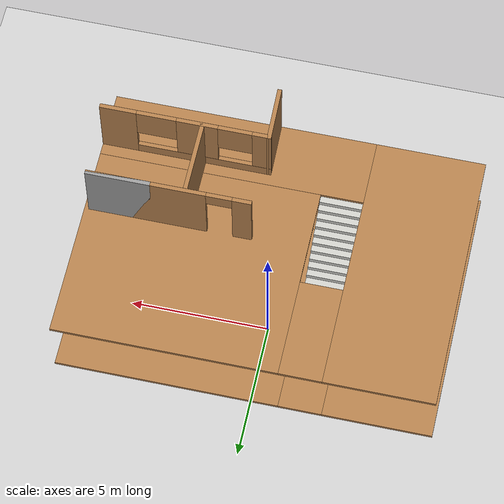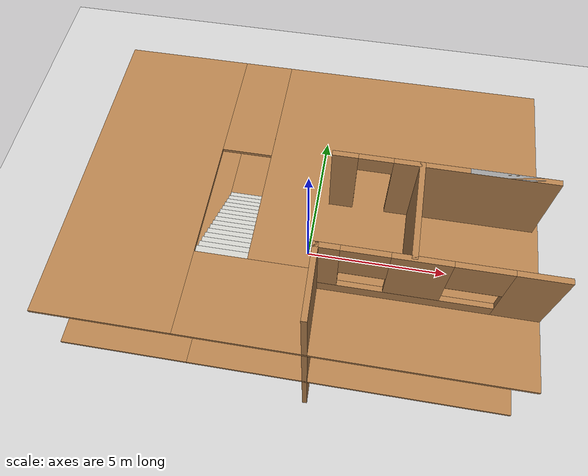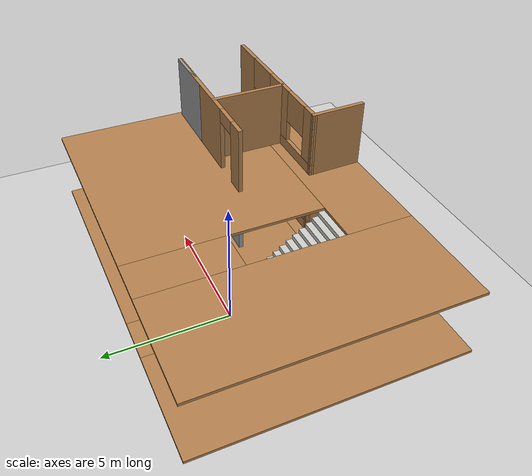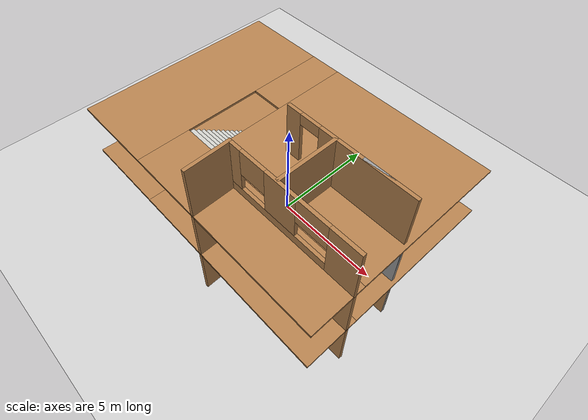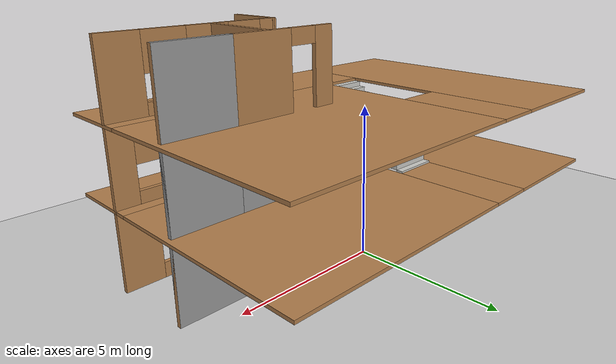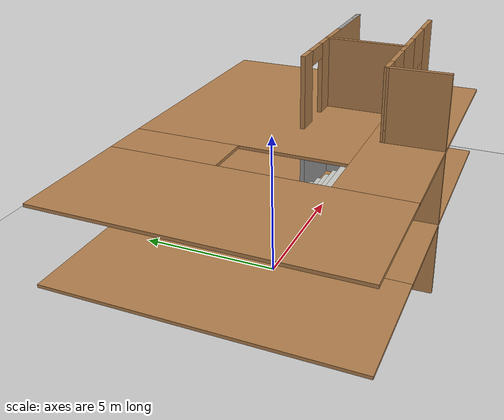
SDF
<sdf version="1.7">
 <world name="default">
  <model name="ground_plane">
   <static>1</static>
   <link name="link">
    <collision name="collision">
     <geometry><plane><normal>0 0 1</normal><size>100 100</size></plane></geometry>
     <surface>
      <contact><collide_bitmask>65535</collide_bitmask></contact>
      <friction><ode><mu>100</mu><mu2>50</mu2></ode></friction>
     </surface>
    </collision>
    <visual name="visual">
     <cast_shadows>0</cast_shadows>
     <geometry><plane><normal>0 0 1</normal><size>100 100</size></plane></geometry>
     <material>
      <script><uri>file://media/materials/scripts/gazebo.material</uri><name>Gazebo/Grey</name></script>
     </material>
    </visual>
   </link>
  </model>
  <model name="three_level_house">
   <pose>0.012851 -0.612237 0 0 -0 0</pose>
   <link name="Floor_1">
    <pose>-0 0 2.5 0 -0 0</pose>
    <visual name="Floor_1_Visual_0">
     <pose>-4.68874 0 0.05 0 -0 0</pose>
     <geometry><box><size>3.84141 9.45494 0.1</size></box></geometry>
     <material>
      <script><uri>file://media/materials/scripts/gazebo.material</uri><name>Gazebo/Wood</name></script>
      <ambient>1 1 1 1</ambient>
     </material>
     <meta><layer>1</layer></meta>
    </visual>
    <collision name="Floor_1_Collision_0">
     <geometry><box><size>3.84141 9.45494 0.1</size></box></geometry>
     <pose>-4.68874 0 0.05 0 -0 0</pose>
    </collision>
    <visual name="Floor_1_Visual_1">
     <pose>1.9207 -3.52351 0.05 0 -0 0</pose>
     <geometry><box><size>9.37748 2.40791 0.1</size></box></geometry>
     <material>
      <script><uri>file://media/materials/scripts/gazebo.material</uri><name>Gazebo/Wood</name></script>
      <ambient>1 1 1 1</ambient>
     </material>
     <meta><layer>1</layer></meta>
    </visual>
    <collision name="Floor_1_Collision_1">
     <geometry><box><size>9.37748 2.40791 0.1</size></box></geometry>
     <pose>1.9207 -3.52351 0.05 0 -0 0</pose>
    </collision>
    <visual name="Floor_1_Visual_2">
     <pose>2.68227 1.20396 0.05 0 -0 0</pose>
     <geometry><box><size>7.85435 7.04702 0.1</size></box></geometry>
     <material>
      <script><uri>file://media/materials/scripts/gazebo.material</uri><name>Gazebo/Wood</name></script>
      <ambient>1 1 1 1</ambient>
     </material>
     <meta><layer>1</layer></meta>
    </visual>
    <collision name="Floor_1_Collision_2">
     <geometry><box><size>7.85435 7.04702 0.1</size></box></geometry>
     <pose>2.68227 1.20396 0.05 0 -0 0</pose>
    </collision>
    <visual name="Floor_1_Visual_3">
     <pose>-2.00647 2.95396 0.05 0 -0 0</pose>
     <geometry><box><size>1.52313 3.54703 0.1</size></box></geometry>
     <material>
      <script><uri>file://media/materials/scripts/gazebo.material</uri><name>Gazebo/Wood</name></script>
      <ambient>1 1 1 1</ambient>
     </material>
     <meta><layer>1</layer></meta>
    </visual>
    <collision name="Floor_1_Collision_3">
     <geometry><box><size>1.52313 3.54703 0.1</size></box></geometry>
     <pose>-2.00647 2.95396 0.05 0 -0 0</pose>
    </collision>
   </link>
   <link name="Floor_3">
    <pose>-0 0 5 0 -0 0</pose>
    <visual name="Floor_3_Visual_0">
     <pose>-4.67718 0 0.05 0 -0 0</pose>
     <geometry><box><size>3.86454 9.45494 0.1</size></box></geometry>
     <material>
      <script><uri>file://media/materials/scripts/gazebo.material</uri><name>Gazebo/Wood</name></script>
      <ambient>1 1 1 1</ambient>
     </material>
     <meta><layer>2</layer></meta>
    </visual>
    <collision name="Floor_3_Collision_0">
     <geometry><box><size>3.86454 9.45494 0.1</size></box></geometry>
     <pose>-4.67718 0 0.05 0 -0 0</pose>
    </collision>
    <visual name="Floor_3_Visual_1">
     <pose>1.93227 -3.52351 0.05 0 -0 0</pose>
     <geometry><box><size>9.35435 2.40791 0.1</size></box></geometry>
     <material>
      <script><uri>file://media/materials/scripts/gazebo.material</uri><name>Gazebo/Wood</name></script>
      <ambient>1 1 1 1</ambient>
     </material>
     <meta><layer>2</layer></meta>
    </visual>
    <collision name="Floor_3_Collision_1">
     <geometry><box><size>9.35435 2.40791 0.1</size></box></geometry>
     <pose>1.93227 -3.52351 0.05 0 -0 0</pose>
    </collision>
    <visual name="Floor_3_Visual_2">
     <pose>2.68227 1.20396 0.05 0 -0 0</pose>
     <geometry><box><size>7.85435 7.04702 0.1</size></box></geometry>
     <material>
      <script><uri>file://media/materials/scripts/gazebo.material</uri><name>Gazebo/Wood</name></script>
      <ambient>1 1 1 1</ambient>
     </material>
     <meta><layer>2</layer></meta>
    </visual>
    <collision name="Floor_3_Collision_2">
     <geometry><box><size>7.85435 7.04702 0.1</size></box></geometry>
     <pose>2.68227 1.20396 0.05 0 -0 0</pose>
    </collision>
    <visual name="Floor_3_Visual_3">
     <pose>-1.99491 2.95396 0.05 0 -0 0</pose>
     <geometry><box><size>1.5 3.54703 0.1</size></box></geometry>
     <material>
      <script><uri>file://media/materials/scripts/gazebo.material</uri><name>Gazebo/Wood</name></script>
      <ambient>1 1 1 1</ambient>
     </material>
     <meta><layer>2</layer></meta>
    </visual>
    <collision name="Floor_3_Collision_3">
     <geometry><box><size>1.5 3.54703 0.1</size></box></geometry>
     <pose>-1.99491 2.95396 0.05 0 -0 0</pose>
    </collision>
   </link>
   <link name="Stairs_0">
    <visual name="Stairs_0_Visual_0">
     <pose>-2.00647 1.06378 0.083333 0 -0 0</pose>
     <geometry><box><size>1.52313 0.233333 0.166667</size></box></geometry>
     <material>
      <script><uri>file://media/materials/scripts/gazebo.material</uri><name>Gazebo/CeilingTiled</name></script>
      <ambient>0.435294 0.796078 0.67451 1</ambient>
     </material>
     <meta><layer>0</layer></meta>
    </visual>
    <collision name="Stairs_0_Collision_0">
     <geometry><box><size>1.52313 0.233333 0.166667</size></box></geometry>
     <pose>-2.00647 1.06378 0.083333 0 -0 0</pose>
    </collision>
    <visual name="Stairs_0_Visual_1">
     <pose>-2.00647 0.830444 0.25 0 -0 0</pose>
     <geometry><box><size>1.52313 0.233333 0.166667</size></box></geometry>
     <material>
      <script><uri>file://media/materials/scripts/gazebo.material</uri><name>Gazebo/CeilingTiled</name></script>
      <ambient>0.435294 0.796078 0.67451 1</ambient>
     </material>
     <meta><layer>0</layer></meta>
    </visual>
    <collision name="Stairs_0_Collision_1">
     <geometry><box><size>1.52313 0.233333 0.166667</size></box></geometry>
     <pose>-2.00647 0.830444 0.25 0 -0 0</pose>
    </collision>
    <visual name="Stairs_0_Visual_2">
     <pose>-2.00647 0.59711 0.416667 0 -0 0</pose>
     <geometry><box><size>1.52313 0.233333 0.166667</size></box></geometry>
     <material>
      <script><uri>file://media/materials/scripts/gazebo.material</uri><name>Gazebo/CeilingTiled</name></script>
      <ambient>0.435294 0.796078 0.67451 1</ambient>
     </material>
     <meta><layer>0</layer></meta>
    </visual>
    <collision name="Stairs_0_Collision_2">
     <geometry><box><size>1.52313 0.233333 0.166667</size></box></geometry>
     <pose>-2.00647 0.59711 0.416667 0 -0 0</pose>
    </collision>
    <visual name="Stairs_0_Visual_3">
     <pose>-2.00647 0.363777 0.583333 0 -0 0</pose>
     <geometry><box><size>1.52313 0.233333 0.166667</size></box></geometry>
     <material>
      <script><uri>file://media/materials/scripts/gazebo.material</uri><name>Gazebo/CeilingTiled</name></script>
      <ambient>0.435294 0.796078 0.67451 1</ambient>
     </material>
     <meta><layer>0</layer></meta>
    </visual>
    <collision name="Stairs_0_Collision_3">
     <geometry><box><size>1.52313 0.233333 0.166667</size></box></geometry>
     <pose>-2.00647 0.363777 0.583333 0 -0 0</pose>
    </collision>
    <visual name="Stairs_0_Visual_4">
     <pose>-2.00647 0.130444 0.75 0 -0 0</pose>
     <geometry><box><size>1.52313 0.233333 0.166667</size></box></geometry>
     <material>
      <script><uri>file://media/materials/scripts/gazebo.material</uri><name>Gazebo/CeilingTiled</name></script>
      <ambient>0.435294 0.796078 0.67451 1</ambient>
     </material>
     <meta><layer>0</layer></meta>
    </visual>
    <collision name="Stairs_0_Collision_4">
     <geometry><box><size>1.52313 0.233333 0.166667</size></box></geometry>
     <pose>-2.00647 0.130444 0.75 0 -0 0</pose>
    </collision>
    <visual name="Stairs_0_Visual_5">
     <pose>-2.00647 -0.10289 0.916667 0 -0 0</pose>
     <geometry><box><size>1.52313 0.233333 0.166667</size></box></geometry>
     <material>
      <script><uri>file://media/materials/scripts/gazebo.material</uri><name>Gazebo/CeilingTiled</name></script>
      <ambient>0.435294 0.796078 0.67451 1</ambient>
     </material>
     <meta><layer>0</layer></meta>
    </visual>
    <collision name="Stairs_0_Collision_5">
     <geometry><box><size>1.52313 0.233333 0.166667</size></box></geometry>
     <pose>-2.00647 -0.10289 0.916667 0 -0 0</pose>
    </collision>
    <visual name="Stairs_0_Visual_6">
     <pose>-2.00647 -0.336223 1.08333 0 -0 0</pose>
     <geometry><box><size>1.52313 0.233333 0.166667</size></box></geometry>
     <material>
      <script><uri>file://media/materials/scripts/gazebo.material</uri><name>Gazebo/CeilingTiled</name></script>
      <ambient>0.435294 0.796078 0.67451 1</ambient>
     </material>
     <meta><layer>0</layer></meta>
    </visual>
    <collision name="Stairs_0_Collision_6">
     <geometry><box><size>1.52313 0.233333 0.166667</size></box></geometry>
     <pose>-2.00647 -0.336223 1.08333 0 -0 0</pose>
    </collision>
    <visual name="Stairs_0_Visual_7">
     <pose>-2.00647 -0.569556 1.25 0 -0 0</pose>
     <geometry><box><size>1.52313 0.233333 0.166667</size></box></geometry>
     <material>
      <script><uri>file://media/materials/scripts/gazebo.material</uri><name>Gazebo/CeilingTiled</name></script>
      <ambient>0.435294 0.796078 0.67451 1</ambient>
     </material>
     <meta><layer>0</layer></meta>
    </visual>
    <collision name="Stairs_0_Collision_7">
     <geometry><box><size>1.52313 0.233333 0.166667</size></box></geometry>
     <pose>-2.00647 -0.569556 1.25 0 -0 0</pose>
    </collision>
    <visual name="Stairs_0_Visual_8">
     <pose>-2.00647 -0.80289 1.41667 0 -0 0</pose>
     <geometry><box><size>1.52313 0.233333 0.166667</size></box></geometry>
     <material>
      <script><uri>file://media/materials/scripts/gazebo.material</uri><name>Gazebo/CeilingTiled</name></script>
      <ambient>0.435294 0.796078 0.67451 1</ambient>
     </material>
     <meta><layer>0</layer></meta>
    </visual>
    <collision name="Stairs_0_Collision_8">
     <geometry><box><size>1.52313 0.233333 0.166667</size></box></geometry>
     <pose>-2.00647 -0.80289 1.41667 0 -0 0</pose>
    </collision>
    <visual name="Stairs_0_Visual_9">
     <pose>-2.00647 -1.03622 1.58333 0 -0 0</pose>
     <geometry><box><size>1.52313 0.233333 0.166667</size></box></geometry>
     <material>
      <script><uri>file://media/materials/scripts/gazebo.material</uri><name>Gazebo/CeilingTiled</name></script>
      <ambient>0.435294 0.796078 0.67451 1</ambient>
     </material>
     <meta><layer>0</layer></meta>
    </visual>
    <collision name="Stairs_0_Collision_9">
     <geometry><box><size>1.52313 0.233333 0.166667</size></box></geometry>
     <pose>-2.00647 -1.03622 1.58333 0 -0 0</pose>
    </collision>
    <visual name="Stairs_0_Visual_10">
     <pose>-2.00647 -1.26956 1.75 0 -0 0</pose>
     <geometry><box><size>1.52313 0.233333 0.166667</size></box></geometry>
     <material>
      <script><uri>file://media/materials/scripts/gazebo.material</uri><name>Gazebo/CeilingTiled</name></script>
      <ambient>0.435294 0.796078 0.67451 1</ambient>
     </material>
     <meta><layer>0</layer></meta>
    </visual>
    <collision name="Stairs_0_Collision_10">
     <geometry><box><size>1.52313 0.233333 0.166667</size></box></geometry>
     <pose>-2.00647 -1.26956 1.75 0 -0 0</pose>
    </collision>
    <visual name="Stairs_0_Visual_11">
     <pose>-2.00647 -1.50289 1.91667 0 -0 0</pose>
     <geometry><box><size>1.52313 0.233333 0.166667</size></box></geometry>
     <material>
      <script><uri>file://media/materials/scripts/gazebo.material</uri><name>Gazebo/CeilingTiled</name></script>
      <ambient>0.435294 0.796078 0.67451 1</ambient>
     </material>
     <meta><layer>0</layer></meta>
    </visual>
    <collision name="Stairs_0_Collision_11">
     <geometry><box><size>1.52313 0.233333 0.166667</size></box></geometry>
     <pose>-2.00647 -1.50289 1.91667 0 -0 0</pose>
    </collision>
    <visual name="Stairs_0_Visual_12">
     <pose>-2.00647 -1.73622 2.08333 0 -0 0</pose>
     <geometry><box><size>1.52313 0.233333 0.166667</size></box></geometry>
     <material>
      <script><uri>file://media/materials/scripts/gazebo.material</uri><name>Gazebo/CeilingTiled</name></script>
      <ambient>0.435294 0.796078 0.67451 1</ambient>
     </material>
     <meta><layer>0</layer></meta>
    </visual>
    <collision name="Stairs_0_Collision_12">
     <geometry><box><size>1.52313 0.233333 0.166667</size></box></geometry>
     <pose>-2.00647 -1.73622 2.08333 0 -0 0</pose>
    </collision>
    <visual name="Stairs_0_Visual_13">
     <pose>-2.00647 -1.96956 2.25 0 -0 0</pose>
     <geometry><box><size>1.52313 0.233333 0.166667</size></box></geometry>
     <material>
      <script><uri>file://media/materials/scripts/gazebo.material</uri><name>Gazebo/CeilingTiled</name></script>
      <ambient>0.435294 0.796078 0.67451 1</ambient>
     </material>
     <meta><layer>0</layer></meta>
    </visual>
    <collision name="Stairs_0_Collision_13">
     <geometry><box><size>1.52313 0.233333 0.166667</size></box></geometry>
     <pose>-2.00647 -1.96956 2.25 0 -0 0</pose>
    </collision>
    <visual name="Stairs_0_Visual_14">
     <pose>-2.00647 -2.20289 2.41667 0 -0 0</pose>
     <geometry><box><size>1.52313 0.233333 0.166667</size></box></geometry>
     <material>
      <script><uri>file://media/materials/scripts/gazebo.material</uri><name>Gazebo/CeilingTiled</name></script>
      <ambient>0.435294 0.796078 0.67451 1</ambient>
     </material>
     <meta><layer>0</layer></meta>
    </visual>
    <collision name="Stairs_0_Collision_14">
     <geometry><box><size>1.52313 0.233333 0.166667</size></box></geometry>
     <pose>-2.00647 -2.20289 2.41667 0 -0 0</pose>
    </collision>
   </link>
   <link name="Stairs_1">
    <visual name="Stairs_1_Visual_0">
     <pose>-1.99491 1.06378 2.58333 0 -0 0</pose>
     <geometry><box><size>1.5 0.233333 0.166667</size></box></geometry>
     <material>
      <script><uri>file://media/materials/scripts/gazebo.material</uri><name>Gazebo/CeilingTiled</name></script>
      <ambient>0.435294 0.796078 0.67451 1</ambient>
     </material>
     <meta><layer>1</layer></meta>
    </visual>
    <collision name="Stairs_1_Collision_0">
     <geometry><box><size>1.5 0.233333 0.166667</size></box></geometry>
     <pose>-1.99491 1.06378 2.58333 0 -0 0</pose>
    </collision>
    <visual name="Stairs_1_Visual_1">
     <pose>-1.99491 0.830444 2.75 0 -0 0</pose>
     <geometry><box><size>1.5 0.233333 0.166667</size></box></geometry>
     <material>
      <script><uri>file://media/materials/scripts/gazebo.material</uri><name>Gazebo/CeilingTiled</name></script>
      <ambient>0.435294 0.796078 0.67451 1</ambient>
     </material>
     <meta><layer>1</layer></meta>
    </visual>
    <collision name="Stairs_1_Collision_1">
     <geometry><box><size>1.5 0.233333 0.166667</size></box></geometry>
     <pose>-1.99491 0.830444 2.75 0 -0 0</pose>
    </collision>
    <visual name="Stairs_1_Visual_2">
     <pose>-1.99491 0.59711 2.91667 0 -0 0</pose>
     <geometry><box><size>1.5 0.233333 0.166667</size></box></geometry>
     <material>
      <script><uri>file://media/materials/scripts/gazebo.material</uri><name>Gazebo/CeilingTiled</name></script>
      <ambient>0.435294 0.796078 0.67451 1</ambient>
     </material>
     <meta><layer>1</layer></meta>
    </visual>
    <collision name="Stairs_1_Collision_2">
     <geometry><box><size>1.5 0.233333 0.166667</size></box></geometry>
     <pose>-1.99491 0.59711 2.91667 0 -0 0</pose>
    </collision>
    <visual name="Stairs_1_Visual_3">
     <pose>-1.99491 0.363777 3.08333 0 -0 0</pose>
     <geometry><box><size>1.5 0.233333 0.166667</size></box></geometry>
     <material>
      <script><uri>file://media/materials/scripts/gazebo.material</uri><name>Gazebo/CeilingTiled</name></script>
      <ambient>0.435294 0.796078 0.67451 1</ambient>
     </material>
     <meta><layer>1</layer></meta>
    </visual>
    <collision name="Stairs_1_Collision_3">
     <geometry><box><size>1.5 0.233333 0.166667</size></box></geometry>
     <pose>-1.99491 0.363777 3.08333 0 -0 0</pose>
    </collision>
    <visual name="Stairs_1_Visual_4">
     <pose>-1.99491 0.130444 3.25 0 -0 0</pose>
     <geometry><box><size>1.5 0.233333 0.166667</size></box></geometry>
     <material>
      <script><uri>file://media/materials/scripts/gazebo.material</uri><name>Gazebo/CeilingTiled</name></script>
      <ambient>0.435294 0.796078 0.67451 1</ambient>
     </material>
     <meta><layer>1</layer></meta>
    </visual>
    <collision name="Stairs_1_Collision_4">
     <geometry><box><size>1.5 0.233333 0.166667</size></box></geometry>
     <pose>-1.99491 0.130444 3.25 0 -0 0</pose>
    </collision>
    <visual name="Stairs_1_Visual_5">
     <pose>-1.99491 -0.10289 3.41667 0 -0 0</pose>
     <geometry><box><size>1.5 0.233333 0.166667</size></box></geometry>
     <material>
      <script><uri>file://media/materials/scripts/gazebo.material</uri><name>Gazebo/CeilingTiled</name></script>
      <ambient>0.435294 0.796078 0.67451 1</ambient>
     </material>
     <meta><layer>1</layer></meta>
    </visual>
    <collision name="Stairs_1_Collision_5">
     <geometry><box><size>1.5 0.233333 0.166667</size></box></geometry>
     <pose>-1.99491 -0.10289 3.41667 0 -0 0</pose>
    </collision>
    <visual name="Stairs_1_Visual_6">
     <pose>-1.99491 -0.336223 3.58333 0 -0 0</pose>
     <geometry><box><size>1.5 0.233333 0.166667</size></box></geometry>
     <material>
      <script><uri>file://media/materials/scripts/gazebo.material</uri><name>Gazebo/CeilingTiled</name></script>
      <ambient>0.435294 0.796078 0.67451 1</ambient>
     </material>
     <meta><layer>1</layer></meta>
    </visual>
    <collision name="Stairs_1_Collision_6">
     <geometry><box><size>1.5 0.233333 0.166667</size></box></geometry>
     <pose>-1.99491 -0.336223 3.58333 0 -0 0</pose>
    </collision>
    <visual name="Stairs_1_Visual_7">
     <pose>-1.99491 -0.569556 3.75 0 -0 0</pose>
     <geometry><box><size>1.5 0.233333 0.166667</size></box></geometry>
     <material>
      <script><uri>file://media/materials/scripts/gazebo.material</uri><name>Gazebo/CeilingTiled</name></script>
      <ambient>0.435294 0.796078 0.67451 1</ambient>
     </material>
     <meta><layer>1</layer></meta>
    </visual>
    <collision name="Stairs_1_Collision_7">
     <geometry><box><size>1.5 0.233333 0.166667</size></box></geometry>
     <pose>-1.99491 -0.569556 3.75 0 -0 0</pose>
    </collision>
    <visual name="Stairs_1_Visual_8">
     <pose>-1.99491 -0.80289 3.91667 0 -0 0</pose>
     <geometry><box><size>1.5 0.233333 0.166667</size></box></geometry>
     <material>
      <script><uri>file://media/materials/scripts/gazebo.material</uri><name>Gazebo/CeilingTiled</name></script>
      <ambient>0.435294 0.796078 0.67451 1</ambient>
     </material>
     <meta><layer>1</layer></meta>
    </visual>
    <collision name="Stairs_1_Collision_8">
     <geometry><box><size>1.5 0.233333 0.166667</size></box></geometry>
     <pose>-1.99491 -0.80289 3.91667 0 -0 0</pose>
    </collision>
    <visual name="Stairs_1_Visual_9">
     <pose>-1.99491 -1.03622 4.08333 0 -0 0</pose>
     <geometry><box><size>1.5 0.233333 0.166667</size></box></geometry>
     <material>
      <script><uri>file://media/materials/scripts/gazebo.material</uri><name>Gazebo/CeilingTiled</name></script>
      <ambient>0.435294 0.796078 0.67451 1</ambient>
     </material>
     <meta><layer>1</layer></meta>
    </visual>
    <collision name="Stairs_1_Collision_9">
     <geometry><box><size>1.5 0.233333 0.166667</size></box></geometry>
     <pose>-1.99491 -1.03622 4.08333 0 -0 0</pose>
    </collision>
    <visual name="Stairs_1_Visual_10">
     <pose>-1.99491 -1.26956 4.25 0 -0 0</pose>
     <geometry><box><size>1.5 0.233333 0.166667</size></box></geometry>
     <material>
      <script><uri>file://media/materials/scripts/gazebo.material</uri><name>Gazebo/CeilingTiled</name></script>
      <ambient>0.435294 0.796078 0.67451 1</ambient>
     </material>
     <meta><layer>1</layer></meta>
    </visual>
    <collision name="Stairs_1_Collision_10">
     <geometry><box><size>1.5 0.233333 0.166667</size></box></geometry>
     <pose>-1.99491 -1.26956 4.25 0 -0 0</pose>
    </collision>
    <visual name="Stairs_1_Visual_11">
     <pose>-1.99491 -1.50289 4.41667 0 -0 0</pose>
     <geometry><box><size>1.5 0.233333 0.166667</size></box></geometry>
     <material>
      <script><uri>file://media/materials/scripts/gazebo.material</uri><name>Gazebo/CeilingTiled</name></script>
      <ambient>0.435294 0.796078 0.67451 1</ambient>
     </material>
     <meta><layer>1</layer></meta>
    </visual>
    <collision name="Stairs_1_Collision_11">
     <geometry><box><size>1.5 0.233333 0.166667</size></box></geometry>
     <pose>-1.99491 -1.50289 4.41667 0 -0 0</pose>
    </collision>
    <visual name="Stairs_1_Visual_12">
     <pose>-1.99491 -1.73622 4.58333 0 -0 0</pose>
     <geometry><box><size>1.5 0.233333 0.166667</size></box></geometry>
     <material>
      <script><uri>file://media/materials/scripts/gazebo.material</uri><name>Gazebo/CeilingTiled</name></script>
      <ambient>0.435294 0.796078 0.67451 1</ambient>
     </material>
     <meta><layer>1</layer></meta>
    </visual>
    <collision name="Stairs_1_Collision_12">
     <geometry><box><size>1.5 0.233333 0.166667</size></box></geometry>
     <pose>-1.99491 -1.73622 4.58333 0 -0 0</pose>
    </collision>
    <visual name="Stairs_1_Visual_13">
     <pose>-1.99491 -1.96956 4.75 0 -0 0</pose>
     <geometry><box><size>1.5 0.233333 0.166667</size></box></geometry>
     <material>
      <script><uri>file://media/materials/scripts/gazebo.material</uri><name>Gazebo/CeilingTiled</name></script>
      <ambient>0.435294 0.796078 0.67451 1</ambient>
     </material>
     <meta><layer>1</layer></meta>
    </visual>
    <collision name="Stairs_1_Collision_13">
     <geometry><box><size>1.5 0.233333 0.166667</size></box></geometry>
     <pose>-1.99491 -1.96956 4.75 0 -0 0</pose>
    </collision>
    <visual name="Stairs_1_Visual_14">
     <pose>-1.99491 -2.20289 4.91667 0 -0 0</pose>
     <geometry><box><size>1.5 0.233333 0.166667</size></box></geometry>
     <material>
      <script><uri>file://media/materials/scripts/gazebo.material</uri><name>Gazebo/CeilingTiled</name></script>
      <ambient>0.435294 0.796078 0.67451 1</ambient>
     </material>
     <meta><layer>1</layer></meta>
    </visual>
    <collision name="Stairs_1_Collision_14">
     <geometry><box><size>1.5 0.233333 0.166667</size></box></geometry>
     <pose>-1.99491 -2.20289 4.91667 0 -0 0</pose>
    </collision>
   </link>
   <link name="Wall_117">
    <pose>3.60944 -2.80062 5 0 -0 3.14159</pose>
    <visual name="Wall_117_Visual_0">
     <pose>-2.35599 0 1.25 0 -0 0</pose>
     <geometry><box><size>1.28803 0.15 2.5</size></box></geometry>
     <material>
      <script><uri>file://media/materials/scripts/gazebo.material</uri><name>Gazebo/Wood</name></script>
      <ambient>1 1 1 1</ambient>
     </material>
     <meta><layer>2</layer></meta>
    </visual>
    <collision name="Wall_117_Collision_0">
     <geometry><box><size>1.28803 0.15 2.5</size></box></geometry>
     <pose>-2.35599 0 1.25 0 -0 0</pose>
    </collision>
    <visual name="Wall_117_Visual_1">
     <pose>0.644013 0 0.25 0 -0 0</pose>
     <geometry><box><size>4.71197 0.15 0.5</size></box></geometry>
     <material>
      <script><uri>file://media/materials/scripts/gazebo.material</uri><name>Gazebo/Wood</name></script>
      <ambient>1 1 1 1</ambient>
     </material>
     <meta><layer>2</layer></meta>
    </visual>
    <collision name="Wall_117_Collision_1">
     <geometry><box><size>4.71197 0.15 0.5</size></box></geometry>
     <pose>0.644013 0 0.25 0 -0 0</pose>
    </collision>
    <visual name="Wall_117_Visual_2">
     <pose>0.413516 0 1.5 0 -0 0</pose>
     <geometry><box><size>1.45098 0.15 2</size></box></geometry>
     <material>
      <script><uri>file://media/materials/scripts/gazebo.material</uri><name>Gazebo/Wood</name></script>
      <ambient>1 1 1 1</ambient>
     </material>
     <meta><layer>2</layer></meta>
    </visual>
    <collision name="Wall_117_Collision_2">
     <geometry><box><size>1.45098 0.15 2</size></box></geometry>
     <pose>0.413516 0 1.5 0 -0 0</pose>
    </collision>
    <visual name="Wall_117_Visual_3">
     <pose>2.6695 0 1.5 0 -0 0</pose>
     <geometry><box><size>0.660994 0.15 2</size></box></geometry>
     <material>
      <script><uri>file://media/materials/scripts/gazebo.material</uri><name>Gazebo/Wood</name></script>
      <ambient>1 1 1 1</ambient>
     </material>
     <meta><layer>2</layer></meta>
    </visual>
    <collision name="Wall_117_Collision_3">
     <geometry><box><size>0.660994 0.15 2</size></box></geometry>
     <pose>2.6695 0 1.5 0 -0 0</pose>
    </collision>
    <visual name="Wall_117_Visual_4">
     <pose>-1.01197 0 1.9 0 -0 0</pose>
     <geometry><box><size>1.4 0.15 1.2</size></box></geometry>
     <material>
      <script><uri>file://media/materials/scripts/gazebo.material</uri><name>Gazebo/Wood</name></script>
      <ambient>1 1 1 1</ambient>
     </material>
     <meta><layer>2</layer></meta>
    </visual>
    <collision name="Wall_117_Collision_4">
     <geometry><box><size>1.4 0.15 1.2</size></box></geometry>
     <pose>-1.01197 0 1.9 0 -0 0</pose>
    </collision>
    <visual name="Wall_117_Visual_5">
     <pose>1.73901 0 1.9 0 -0 0</pose>
     <geometry><box><size>1.2 0.15 1.2</size></box></geometry>
     <material>
      <script><uri>file://media/materials/scripts/gazebo.material</uri><name>Gazebo/Wood</name></script>
      <ambient>1 1 1 1</ambient>
     </material>
     <meta><layer>2</layer></meta>
    </visual>
    <collision name="Wall_117_Collision_5">
     <geometry><box><size>1.2 0.15 1.2</size></box></geometry>
     <pose>1.73901 0 1.9 0 -0 0</pose>
    </collision>
   </link>
   <link name="Wall_130">
    <collision name="Wall_130_Collision">
     <geometry><box><size>2.00058 0.15 2.5</size></box></geometry>
     <pose>0 0 1.25 0 -0 0</pose>
    </collision>
    <visual name="Wall_130_Visual">
     <pose>0 0 1.25 0 -0 0</pose>
     <geometry><box><size>2.00058 0.15 2.5</size></box></geometry>
     <material>
      <script><uri>file://media/materials/scripts/gazebo.material</uri><name>Gazebo/Wood</name></script>
      <ambient>1 1 1 1</ambient>
     </material>
     <meta><layer>2</layer></meta>
    </visual>
    <pose>0.707575 -3.72562 5 0 -0 1.5958</pose>
   </link>
   <link name="Wall_135">
    <collision name="Wall_135_Collision">
     <geometry><box><size>2.25 0.15 2.5</size></box></geometry>
     <pose>0 0 1.25 0 -0 0</pose>
    </collision>
    <visual name="Wall_135_Visual">
     <pose>0 0 1.25 0 -0 0</pose>
     <geometry><box><size>2.25 0.15 2.5</size></box></geometry>
     <material>
      <script><uri>file://media/materials/scripts/gazebo.material</uri><name>Gazebo/Grey</name></script>
      <ambient>1 1 1 1</ambient>
     </material>
     <meta><layer>2</layer></meta>
    </visual>
    <pose>5.33098 -0.142465 5 0 -0 0</pose>
   </link>
   <link name="Wall_136">
    <pose>3.58098 -0.142465 5 0 -0 3.14159</pose>
    <visual name="Wall_136_Visual_0">
     <pose>-0.787002 0 1.25 0 -0 0</pose>
     <geometry><box><size>4.176 0.15 2.5</size></box></geometry>
     <material>
      <script><uri>file://media/materials/scripts/gazebo.material</uri><name>Gazebo/Wood</name></script>
      <ambient>1 1 1 1</ambient>
     </material>
     <meta><layer>2</layer></meta>
    </visual>
    <collision name="Wall_136_Collision_0">
     <geometry><box><size>4.176 0.15 2.5</size></box></geometry>
     <pose>-0.787002 0 1.25 0 -0 0</pose>
    </collision>
    <visual name="Wall_136_Visual_1">
     <pose>2.538 0 1.25 0 -0 0</pose>
     <geometry><box><size>0.674004 0.15 2.5</size></box></geometry>
     <material>
      <script><uri>file://media/materials/scripts/gazebo.material</uri><name>Gazebo/Wood</name></script>
      <ambient>1 1 1 1</ambient>
     </material>
     <meta><layer>2</layer></meta>
    </visual>
    <collision name="Wall_136_Collision_1">
     <geometry><box><size>0.674004 0.15 2.5</size></box></geometry>
     <pose>2.538 0 1.25 0 -0 0</pose>
    </collision>
    <visual name="Wall_136_Visual_2">
     <pose>1.751 0 2.25 0 -0 0</pose>
     <geometry><box><size>0.9 0.15 0.5</size></box></geometry>
     <material>
      <script><uri>file://media/materials/scripts/gazebo.material</uri><name>Gazebo/Wood</name></script>
      <ambient>1 1 1 1</ambient>
     </material>
     <meta><layer>2</layer></meta>
    </visual>
    <collision name="Wall_136_Collision_2">
     <geometry><box><size>0.9 0.15 0.5</size></box></geometry>
     <pose>1.751 0 2.25 0 -0 0</pose>
    </collision>
   </link>
   <link name="Wall_137">
    <collision name="Wall_137_Collision">
     <geometry><box><size>2.75 0.15 2.5</size></box></geometry>
     <pose>0 0 1.25 0 -0 0</pose>
    </collision>
    <visual name="Wall_137_Visual">
     <pose>0 0 1.25 0 -0 0</pose>
     <geometry><box><size>2.75 0.15 2.5</size></box></geometry>
     <material>
      <script><uri>file://media/materials/scripts/gazebo.material</uri><name>Gazebo/Wood</name></script>
      <ambient>1 1 1 1</ambient>
     </material>
     <meta><layer>2</layer></meta>
    </visual>
    <pose>3.00803 -1.44336 5 0 -0 -1.5708</pose>
   </link>
   <link name="Wall_27">
    <collision name="Wall_27_Collision">
     <geometry><box><size>2.00058 0.15 2.5</size></box></geometry>
     <pose>0 0 1.25 0 -0 0</pose>
    </collision>
    <visual name="Wall_27_Visual">
     <pose>0 0 1.25 0 -0 0</pose>
     <geometry><box><size>2.00058 0.15 2.5</size></box></geometry>
     <material>
      <script><uri>file://media/materials/scripts/gazebo.material</uri><name>Gazebo/Wood</name></script>
      <ambient>1 1 1 1</ambient>
     </material>
     <meta><layer>0</layer></meta>
    </visual>
    <pose>0.707575 -3.72562 0 0 -0 1.5958</pose>
   </link>
   <link name="Wall_33">
    <collision name="Wall_33_Collision">
     <geometry><box><size>2.25 0.15 2.5</size></box></geometry>
     <pose>0 0 1.25 0 -0 0</pose>
    </collision>
    <visual name="Wall_33_Visual">
     <pose>0 0 1.25 0 -0 0</pose>
     <geometry><box><size>2.25 0.15 2.5</size></box></geometry>
     <material>
      <script><uri>file://media/materials/scripts/gazebo.material</uri><name>Gazebo/Grey</name></script>
      <ambient>1 1 1 1</ambient>
     </material>
     <meta><layer>0</layer></meta>
    </visual>
    <pose>5.33098 -0.142465 0 0 -0 0</pose>
   </link>
   <link name="Wall_34">
    <pose>3.58098 -0.142465 0 0 -0 3.14159</pose>
    <visual name="Wall_34_Visual_0">
     <pose>-1.70207 0 1.25 0 -0 0</pose>
     <geometry><box><size>2.34586 0.15 2.5</size></box></geometry>
     <material>
      <script><uri>file://media/materials/scripts/gazebo.material</uri><name>Gazebo/Wood</name></script>
      <ambient>1 1 1 1</ambient>
     </material>
     <meta><layer>0</layer></meta>
    </visual>
    <collision name="Wall_34_Collision_0">
     <geometry><box><size>2.34586 0.15 2.5</size></box></geometry>
     <pose>-1.70207 0 1.25 0 -0 0</pose>
    </collision>
    <visual name="Wall_34_Visual_1">
     <pose>0.812698 0 1.25 0 -0 0</pose>
     <geometry><box><size>0.883675 0.15 2.5</size></box></geometry>
     <material>
      <script><uri>file://media/materials/scripts/gazebo.material</uri><name>Gazebo/Wood</name></script>
      <ambient>1 1 1 1</ambient>
     </material>
     <meta><layer>0</layer></meta>
    </visual>
    <collision name="Wall_34_Collision_1">
     <geometry><box><size>0.883675 0.15 2.5</size></box></geometry>
     <pose>0.812698 0 1.25 0 -0 0</pose>
    </collision>
    <visual name="Wall_34_Visual_2">
     <pose>2.51477 0 1.25 0 -0 0</pose>
     <geometry><box><size>0.720465 0.15 2.5</size></box></geometry>
     <material>
      <script><uri>file://media/materials/scripts/gazebo.material</uri><name>Gazebo/Wood</name></script>
      <ambient>1 1 1 1</ambient>
     </material>
     <meta><layer>0</layer></meta>
    </visual>
    <collision name="Wall_34_Collision_2">
     <geometry><box><size>0.720465 0.15 2.5</size></box></geometry>
     <pose>2.51477 0 1.25 0 -0 0</pose>
    </collision>
    <visual name="Wall_34_Visual_3">
     <pose>-0.07914 0 2.25 0 -0 0</pose>
     <geometry><box><size>0.9 0.15 0.5</size></box></geometry>
     <material>
      <script><uri>file://media/materials/scripts/gazebo.material</uri><name>Gazebo/Wood</name></script>
      <ambient>1 1 1 1</ambient>
     </material>
     <meta><layer>0</layer></meta>
    </visual>
    <collision name="Wall_34_Collision_3">
     <geometry><box><size>0.9 0.15 0.5</size></box></geometry>
     <pose>-0.07914 0 2.25 0 -0 0</pose>
    </collision>
    <visual name="Wall_34_Visual_4">
     <pose>1.70453 0 2.25 0 -0 0</pose>
     <geometry><box><size>0.9 0.15 0.5</size></box></geometry>
     <material>
      <script><uri>file://media/materials/scripts/gazebo.material</uri><name>Gazebo/Wood</name></script>
      <ambient>1 1 1 1</ambient>
     </material>
     <meta><layer>0</layer></meta>
    </visual>
    <collision name="Wall_34_Collision_4">
     <geometry><box><size>0.9 0.15 0.5</size></box></geometry>
     <pose>1.70453 0 2.25 0 -0 0</pose>
    </collision>
   </link>
   <link name="Wall_36">
    <collision name="Wall_36_Collision">
     <geometry><box><size>2.75 0.15 2.5</size></box></geometry>
     <pose>0 0 1.25 0 -0 0</pose>
    </collision>
    <visual name="Wall_36_Visual">
     <pose>0 0 1.25 0 -0 0</pose>
     <geometry><box><size>2.75 0.15 2.5</size></box></geometry>
     <material>
      <script><uri>file://media/materials/scripts/gazebo.material</uri><name>Gazebo/Wood</name></script>
      <ambient>1 1 1 1</ambient>
     </material>
     <meta><layer>0</layer></meta>
    </visual>
    <pose>3.00803 -1.44336 0 0 -0 -1.5708</pose>
   </link>
   <link name="Wall_67">
    <pose>3.60944 -2.80062 2.5 0 -0 3.14159</pose>
    <visual name="Wall_67_Visual_0">
     <pose>-2.62336 0 1.25 0 -0 0</pose>
     <geometry><box><size>0.753279 0.15 2.5</size></box></geometry>
     <material>
      <script><uri>file://media/materials/scripts/gazebo.material</uri><name>Gazebo/Wood</name></script>
      <ambient>1 1 1 1</ambient>
     </material>
     <meta><layer>1</layer></meta>
    </visual>
    <collision name="Wall_67_Collision_0">
     <geometry><box><size>0.753279 0.15 2.5</size></box></geometry>
     <pose>-2.62336 0 1.25 0 -0 0</pose>
    </collision>
    <visual name="Wall_67_Visual_1">
     <pose>0.376639 0 0.25 0 -0 0</pose>
     <geometry><box><size>5.24672 0.15 0.5</size></box></geometry>
     <material>
      <script><uri>file://media/materials/scripts/gazebo.material</uri><name>Gazebo/Wood</name></script>
      <ambient>1 1 1 1</ambient>
     </material>
     <meta><layer>1</layer></meta>
    </visual>
    <collision name="Wall_67_Collision_1">
     <geometry><box><size>5.24672 0.15 0.5</size></box></geometry>
     <pose>0.376639 0 0.25 0 -0 0</pose>
    </collision>
    <visual name="Wall_67_Visual_2">
     <pose>0.326844 0 1.5 0 -0 0</pose>
     <geometry><box><size>2.14713 0.15 2</size></box></geometry>
     <material>
      <script><uri>file://media/materials/scripts/gazebo.material</uri><name>Gazebo/Wood</name></script>
      <ambient>1 1 1 1</ambient>
     </material>
     <meta><layer>1</layer></meta>
    </visual>
    <collision name="Wall_67_Collision_2">
     <geometry><box><size>2.14713 0.15 2</size></box></geometry>
     <pose>0.326844 0 1.5 0 -0 0</pose>
    </collision>
    <visual name="Wall_67_Visual_3">
     <pose>2.6002 0 1.5 0 -0 0</pose>
     <geometry><box><size>0.799591 0.15 2</size></box></geometry>
     <material>
      <script><uri>file://media/materials/scripts/gazebo.material</uri><name>Gazebo/Wood</name></script>
      <ambient>1 1 1 1</ambient>
     </material>
     <meta><layer>1</layer></meta>
    </visual>
    <collision name="Wall_67_Collision_3">
     <geometry><box><size>0.799591 0.15 2</size></box></geometry>
     <pose>2.6002 0 1.5 0 -0 0</pose>
    </collision>
    <visual name="Wall_67_Visual_4">
     <pose>-1.49672 0 1.9 0 -0 0</pose>
     <geometry><box><size>1.5 0.15 1.2</size></box></geometry>
     <material>
      <script><uri>file://media/materials/scripts/gazebo.material</uri><name>Gazebo/Wood</name></script>
      <ambient>1 1 1 1</ambient>
     </material>
     <meta><layer>1</layer></meta>
    </visual>
    <collision name="Wall_67_Collision_4">
     <geometry><box><size>1.5 0.15 1.2</size></box></geometry>
     <pose>-1.49672 0 1.9 0 -0 0</pose>
    </collision>
    <visual name="Wall_67_Visual_5">
     <pose>1.80041 0 1.9 0 -0 0</pose>
     <geometry><box><size>0.8 0.15 1.2</size></box></geometry>
     <material>
      <script><uri>file://media/materials/scripts/gazebo.material</uri><name>Gazebo/Wood</name></script>
      <ambient>1 1 1 1</ambient>
     </material>
     <meta><layer>1</layer></meta>
    </visual>
    <collision name="Wall_67_Collision_5">
     <geometry><box><size>0.8 0.15 1.2</size></box></geometry>
     <pose>1.80041 0 1.9 0 -0 0</pose>
    </collision>
   </link>
   <link name="Wall_80">
    <collision name="Wall_80_Collision">
     <geometry><box><size>2.00058 0.15 2.5</size></box></geometry>
     <pose>0 0 1.25 0 -0 0</pose>
    </collision>
    <visual name="Wall_80_Visual">
     <pose>0 0 1.25 0 -0 0</pose>
     <geometry><box><size>2.00058 0.15 2.5</size></box></geometry>
     <material>
      <script><uri>file://media/materials/scripts/gazebo.material</uri><name>Gazebo/Wood</name></script>
      <ambient>1 1 1 1</ambient>
     </material>
     <meta><layer>1</layer></meta>
    </visual>
    <pose>0.707575 -3.72562 2.5 0 -0 1.5958</pose>
   </link>
   <link name="Wall_85">
    <collision name="Wall_85_Collision">
     <geometry><box><size>2.25 0.15 2.5</size></box></geometry>
     <pose>0 0 1.25 0 -0 0</pose>
    </collision>
    <visual name="Wall_85_Visual">
     <pose>0 0 1.25 0 -0 0</pose>
     <geometry><box><size>2.25 0.15 2.5</size></box></geometry>
     <material>
      <script><uri>file://media/materials/scripts/gazebo.material</uri><name>Gazebo/Grey</name></script>
      <ambient>1 1 1 1</ambient>
     </material>
     <meta><layer>1</layer></meta>
    </visual>
    <pose>5.33098 -0.142465 2.5 0 -0 0</pose>
   </link>
   <link name="Wall_86">
    <collision name="Wall_86_Collision">
     <geometry><box><size>5.75 0.15 2.5</size></box></geometry>
     <pose>0 0 1.25 0 -0 0</pose>
    </collision>
    <visual name="Wall_86_Visual">
     <pose>0 0 1.25 0 -0 0</pose>
     <geometry><box><size>5.75 0.15 2.5</size></box></geometry>
     <material>
      <script><uri>file://media/materials/scripts/gazebo.material</uri><name>Gazebo/Grey</name></script>
      <ambient>1 1 1 1</ambient>
     </material>
     <meta><layer>1</layer></meta>
    </visual>
    <pose>3.58098 -0.142465 2.5 0 -0 3.14159</pose>
   </link>
   <link name="Wall_87">
    <pose>3.00803 -1.44336 2.5 0 -0 -1.5708</pose>
    <visual name="Wall_87_Visual_0">
     <pose>-1.02344 0 1.25 0 -0 0</pose>
     <geometry><box><size>0.70311 0.15 2.5</size></box></geometry>
     <material>
      <script><uri>file://media/materials/scripts/gazebo.material</uri><name>Gazebo/Grey</name></script>
      <ambient>1 1 1 1</ambient>
     </material>
     <meta><layer>1</layer></meta>
    </visual>
    <collision name="Wall_87_Collision_0">
     <geometry><box><size>0.70311 0.15 2.5</size></box></geometry>
     <pose>-1.02344 0 1.25 0 -0 0</pose>
    </collision>
    <visual name="Wall_87_Visual_1">
     <pose>1.00155 0 1.25 0 -0 0</pose>
     <geometry><box><size>0.74689 0.15 2.5</size></box></geometry>
     <material>
      <script><uri>file://media/materials/scripts/gazebo.material</uri><name>Gazebo/Grey</name></script>
      <ambient>1 1 1 1</ambient>
     </material>
     <meta><layer>1</layer></meta>
    </visual>
    <collision name="Wall_87_Collision_1">
     <geometry><box><size>0.74689 0.15 2.5</size></box></geometry>
     <pose>1.00155 0 1.25 0 -0 0</pose>
    </collision>
    <visual name="Wall_87_Visual_2">
     <pose>-0.02189 0 2.25 0 -0 0</pose>
     <geometry><box><size>1.3 0.15 0.5</size></box></geometry>
     <material>
      <script><uri>file://media/materials/scripts/gazebo.material</uri><name>Gazebo/Grey</name></script>
      <ambient>1 1 1 1</ambient>
     </material>
     <meta><layer>1</layer></meta>
    </visual>
    <collision name="Wall_87_Collision_2">
     <geometry><box><size>1.3 0.15 0.5</size></box></geometry>
     <pose>-0.02189 0 2.25 0 -0 0</pose>
    </collision>
   </link>
   <link name="Wall_9">
    <pose>3.60944 -2.80062 0 0 -0 3.14159</pose>
    <visual name="Wall_9_Visual_0">
     <pose>-2.37048 0 1.25 0 -0 0</pose>
     <geometry><box><size>1.25903 0.15 2.5</size></box></geometry>
     <material>
      <script><uri>file://media/materials/scripts/gazebo.material</uri><name>Gazebo/Wood</name></script>
      <ambient>1 1 1 1</ambient>
     </material>
     <meta><layer>0</layer></meta>
    </visual>
    <collision name="Wall_9_Collision_0">
     <geometry><box><size>1.25903 0.15 2.5</size></box></geometry>
     <pose>-2.37048 0 1.25 0 -0 0</pose>
    </collision>
    <visual name="Wall_9_Visual_1">
     <pose>0.629516 0 0.25 0 -0 0</pose>
     <geometry><box><size>4.74097 0.15 0.5</size></box></geometry>
     <material>
      <script><uri>file://media/materials/scripts/gazebo.material</uri><name>Gazebo/Wood</name></script>
      <ambient>1 1 1 1</ambient>
     </material>
     <meta><layer>0</layer></meta>
    </visual>
    <collision name="Wall_9_Collision_1">
     <geometry><box><size>4.74097 0.15 0.5</size></box></geometry>
     <pose>0.629516 0 0.25 0 -0 0</pose>
    </collision>
    <visual name="Wall_9_Visual_2">
     <pose>0.262172 0 1.5 0 -0 0</pose>
     <geometry><box><size>1.40628 0.15 2</size></box></geometry>
     <material>
      <script><uri>file://media/materials/scripts/gazebo.material</uri><name>Gazebo/Wood</name></script>
      <ambient>1 1 1 1</ambient>
     </material>
     <meta><layer>0</layer></meta>
    </visual>
    <collision name="Wall_9_Collision_2">
     <geometry><box><size>1.40628 0.15 2</size></box></geometry>
     <pose>0.262172 0 1.5 0 -0 0</pose>
    </collision>
    <visual name="Wall_9_Visual_3">
     <pose>2.63266 0 1.5 0 -0 0</pose>
     <geometry><box><size>0.734687 0.15 2</size></box></geometry>
     <material>
      <script><uri>file://media/materials/scripts/gazebo.material</uri><name>Gazebo/Wood</name></script>
      <ambient>1 1 1 1</ambient>
     </material>
     <meta><layer>0</layer></meta>
    </visual>
    <collision name="Wall_9_Collision_3">
     <geometry><box><size>0.734687 0.15 2</size></box></geometry>
     <pose>2.63266 0 1.5 0 -0 0</pose>
    </collision>
    <visual name="Wall_9_Visual_4">
     <pose>1.61531 0 0.5 0 -0 0</pose>
     <geometry><box><size>1.3 0.15 0</size></box></geometry>
     <material>
      <script><uri>file://media/materials/scripts/gazebo.material</uri><name>Gazebo/Wood</name></script>
      <ambient>1 1 1 1</ambient>
     </material>
     <meta><layer>0</layer></meta>
    </visual>
    <collision name="Wall_9_Collision_4">
     <geometry><box><size>1.3 0.15 0</size></box></geometry>
     <pose>1.61531 0 0.5 0 -0 0</pose>
    </collision>
    <visual name="Wall_9_Visual_5">
     <pose>1.61531 0 1.9 0 -0 0</pose>
     <geometry><box><size>1.3 0.15 1.2</size></box></geometry>
     <material>
      <script><uri>file://media/materials/scripts/gazebo.material</uri><name>Gazebo/Wood</name></script>
      <ambient>1 1 1 1</ambient>
     </material>
     <meta><layer>0</layer></meta>
    </visual>
    <collision name="Wall_9_Collision_5">
     <geometry><box><size>1.3 0.15 1.2</size></box></geometry>
     <pose>1.61531 0 1.9 0 -0 0</pose>
    </collision>
    <visual name="Wall_9_Visual_6">
     <pose>-1.09097 0 2.15 0 -0 0</pose>
     <geometry><box><size>1.3 0.15 0.7</size></box></geometry>
     <material>
      <script><uri>file://media/materials/scripts/gazebo.material</uri><name>Gazebo/Wood</name></script>
      <ambient>1 1 1 1</ambient>
     </material>
     <meta><layer>0</layer></meta>
    </visual>
    <collision name="Wall_9_Collision_6">
     <geometry><box><size>1.3 0.15 0.7</size></box></geometry>
     <pose>-1.09097 0 2.15 0 -0 0</pose>
    </collision>
   </link>
   <static>1</static>
  </model>
 </world>
</sdf>
